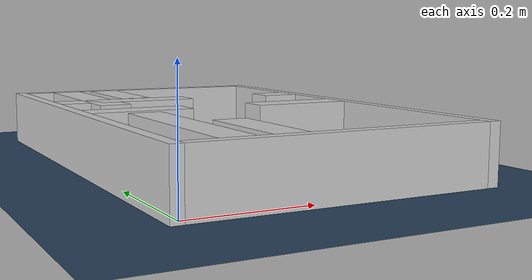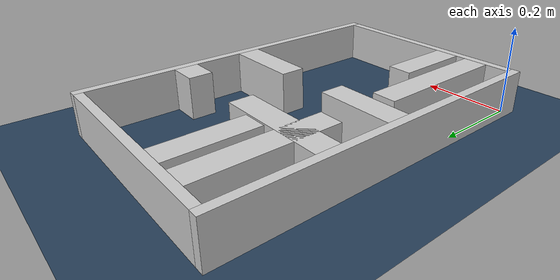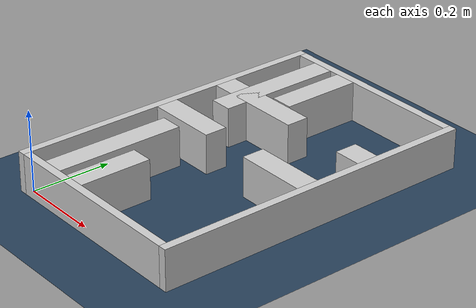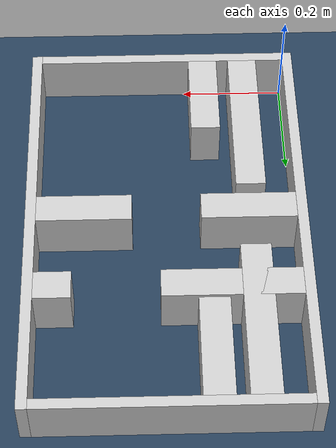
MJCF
<?xml version="1.0" ?>
<mujoco model="generated_real_template">
  <compiler angle="degree"/>
  <option timestep="0.002" integrator="implicitfast" iterations="100" cone="elliptic"/>
  <default>
    <geom density="1"/>
  </default>
  <asset>
    <texture builtin="gradient" height="3072" rgb1="0.3 0.5 0.7" rgb2="0 0 0" type="skybox" width="512"/>
    <texture builtin="checker" height="300" mark="edge" markrgb="0.8 0.8 0.8" name="groundplane" rgb1="0.2 0.3 0.4" rgb2="0.1 0.2 0.3" type="2d" width="300"/>
    <material name="groundplane" reflectance="0.2" texrepeat="5 5" texture="groundplane" texuniform="true"/>
  </asset>
  <worldbody>
    <light dir="0 0 -1" directional="true" pos="0 0 1.5"/>
    <geom name="floor" type="plane" condim="4" friction="0.5 0.005 0.001" material="groundplane" size="0 0 0.05"/>
    <body name="walls">
      <geom name="wall_boundary_left" type="box" condim="4" friction="1.0 0.005 0.0001" rgba="0.8 0.8 0.8 1" pos="-0.010000 0.387500 0.050000" euler="0 0 0.000000" size="0.010000 0.407500 0.050000"/>
      <geom name="wall_boundary_right" type="box" condim="4" friction="1.0 0.005 0.0001" rgba="0.8 0.8 0.8 1" pos="0.500000 0.387500 0.050000" euler="0 0 0.000000" size="0.010000 0.407500 0.050000"/>
      <geom name="wall_boundary_bottom" type="box" condim="4" friction="1.0 0.005 0.0001" rgba="0.8 0.8 0.8 1" pos="0.245000 -0.010000 0.050000" euler="0 0 0.000000" size="0.245000 0.010000 0.050000"/>
      <geom name="wall_boundary_top" type="box" condim="4" friction="1.0 0.005 0.0001" rgba="0.8 0.8 0.8 1" pos="0.245000 0.785000 0.050000" euler="0 0 0.000000" size="0.245000 0.010000 0.050000"/>
      <geom name="wall_inner_1_1" type="box" condim="4" friction="1.0 0.005 0.0001" rgba="0.8 0.8 0.8 1" pos="0.129539 0.544096 0.050000" euler="0 0 0.000000" size="0.129539 0.028500 0.050000"/>
      <geom name="wall_inner_1_2" type="box" condim="4" friction="1.0 0.005 0.0001" rgba="0.8 0.8 0.8 1" pos="0.455317 0.544096 0.050000" euler="0 0 0.000000" size="0.034683 0.028500 0.050000"/>
      <geom name="wall_inner_2_1" type="box" condim="4" friction="1.0 0.005 0.0001" rgba="0.8 0.8 0.8 1" pos="0.163476 0.089633 0.050000" euler="0 0 90.000000" size="0.089633 0.028500 0.050000"/>
      <geom name="wall_inner_2_2" type="box" condim="4" friction="1.0 0.005 0.0001" rgba="0.8 0.8 0.8 1" pos="0.163476 0.675821 0.050000" euler="0 0 90.000000" size="0.099179 0.028500 0.050000"/>
      <geom name="wall_inner_3_1" type="box" condim="4" friction="1.0 0.005 0.0001" rgba="0.8 0.8 0.8 1" pos="0.082961 0.160680 0.050000" euler="0 0 90.000000" size="0.160680 0.028500 0.050000"/>
      <geom name="wall_inner_3_2" type="box" condim="4" friction="1.0 0.005 0.0001" rgba="0.8 0.8 0.8 1" pos="0.082961 0.618530 0.050000" euler="0 0 90.000000" size="0.156470 0.028500 0.050000"/>
      <geom name="wall_inner_4_1" type="box" condim="4" friction="1.0 0.005 0.0001" rgba="0.8 0.8 0.8 1" pos="0.090076 0.371690 0.050000" euler="0 0 0.000000" size="0.090076 0.028500 0.050000"/>
      <geom name="wall_inner_4_2" type="box" condim="4" friction="1.0 0.005 0.0001" rgba="0.8 0.8 0.8 1" pos="0.399998 0.371690 0.050000" euler="0 0 0.000000" size="0.090002 0.028500 0.050000"/>
    </body>
  </worldbody>
</mujoco>
